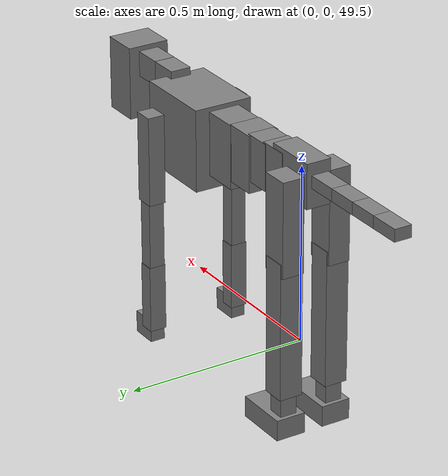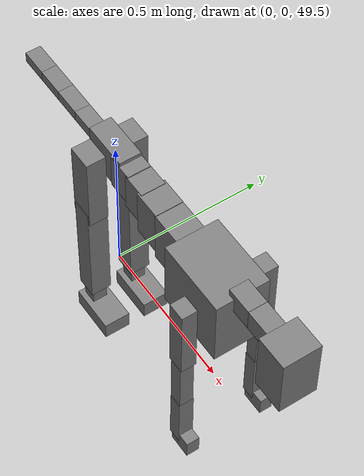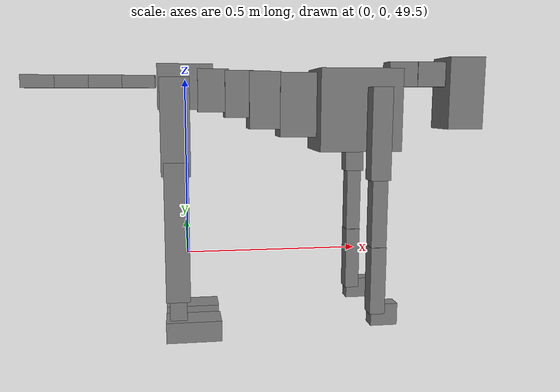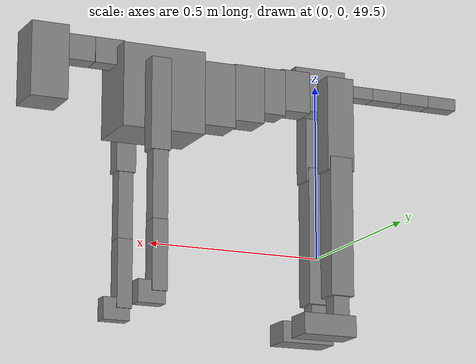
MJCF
<mujoco model="dog">

    <default>
        <joint armature="0.02" stiffness="1" damping="0.2" limited="true"/>
        <geom condim="3" friction="1 0.05 0.05" margin="0.01"/>
        <motor ctrllimited="true" ctrlrange="-1.0 1.0" forcelimited="true" gear="50"/>
    </default>

    <compiler inertiafromgeom="true" angle="radian"/>

    <option timestep="0.016" iterations="50" tolerance="1e-10" solver="Newton" jacobian="dense" cone="pyramidal"/>

    <size nconmax="20000" njmax="60000" nstack="5000000"/>
    <visual>
        <map force="0.1" zfar="30"/>
        <rgba haze="0.15 0.25 0.35 1"/>
        <quality shadowsize="2048"/>
        <global offwidth="800" offheight="800"/>
    </visual>

    <asset>
        <texture type="skybox" builtin="gradient" rgb1="0.3 0.5 0.7" rgb2="0 0 0" width="512" height="512"/>
        <texture name="texplane" type="2d" builtin="checker" rgb1=".2 .3 .4" rgb2=".1 0.15 0.2" width="512" height="512"
                 mark="cross" markrgb=".8 .8 .8"/>
        <texture name="texgeom" type="cube" builtin="flat" mark="cross" width="127" height="1278" rgb1="0.8 0.6 0.4"
                 rgb2="0.8 0.6 0.4" markrgb="1 1 1" random="0.01"/>

        <material name="matplane" reflectance="0.3" texture="texplane" texrepeat="1 1" texuniform="true"/>
        <material name="matgeom" texture="texgeom" texuniform="true" rgba="0.8 0.6 .4 1"/>
    </asset>

    <worldbody>
        <geom name="floor" pos="0 0 0" size="0 0 .25" type="plane" material="matplane" condim="3"/>

        <light directional="false" diffuse=".2 .2 .2" specular="0 0 0" pos="0 0 5" dir="0 0 -1" castshadow="false"/>
        <light mode="targetbodycom" target="torso" directional="false" diffuse=".8 .8 .8" specular="0.3 0.3 0.3"
               pos="0 0 4.0" dir="0 0 -1"/>

        <body name="root" pos="0 0 50">
            <freejoint name="root_1"/>
            <geom type="box" pos="0 0 -0.02" size="0.0774  0.0358  0.063" density="2030"/>

            <body name="spine1" pos="0.054 0 0">
                <joint name="spine1_y" axis="0 1 0" range="0 0.7" limited="true"/>
                <geom type="box" pos="0.02375 0 -0.03" size="0.04375  0.0375  0.05985" density="2030"/>

                <body name="spine2" pos="0.0612 0 0">
                    <joint name="spine2_y" axis="0 1 0" range="-0.15 0.15" limited="true"/>
                    <geom type="box" pos="0.03555  0  -0.04" size="0.04055  0.039  0.06615" density="2030"/>

                    <body name="spine3" pos="0.0730 0 0">
                        <joint name="spine3_y" axis="0 1 0" range="-0.15 0.15" limited="true"/>
                        <geom type="box" pos="0.03555  0  -0.057" size="0.04555  0.0445  0.081" density="2030"/>

                        <body name="spine4" pos="0.0780 0 0">
                            <joint name="spine4_y" axis="0 1 0" range="-0.15 0.15" limited="true"/>
                            <geom type="box" pos="0.05265  0  -0.07" size="0.05265  0.045  0.09135" density="2030"/>

                            <body name="torso" pos="0.1082 0 0">
                                <joint name="torso_y" axis="0 1 0" range="-0.15 0.15" limited="true"/>
                                <geom type="box" pos="0.11925  0  -0.085" size="0.11925  0.085  0.11745"
                                      density="2030"/>

                                <body name="neck1" pos="0.2160  0   0.0180">
                                    <joint name="neck1_y" axis="0 1 0" range="-1.2  -1" limited="true"/>
                                    <geom type="box" pos="0.0423  0  0" size="0.0423  0.03  0.036" density="2325"/>

                                    <body name="neck2" pos="0.0853  0  0">
                                        <joint name="neck2_y" axis="0 1 0" range="0.1  0" limited="true"/>
                                        <geom type="box" pos="0.0423  0  0" size="0.0423  0.03  0.036" density="2325"/>

                                        <body name="head" pos="0.0853  0  0">
                                            <joint name="head_y" axis="0 1 0" range="-0.3  -0.2" limited="true"/>
                                            <geom type="box" pos="0.0531  0  -0.055" size="0.0531  0.06  0.1044"
                                                  density="4030"/>

                                        </body>
                                    </body>
                                </body>

                                <body name="front_shoulder" pos="0.156  0   -0.0480">
                                    <joint name="front_shoulder_y" axis="0 1 0" range="-1 1.5" limited="true"/>
                                    <geom type="box" pos="0 0.13 -0.1015" size="0.0285  0.0243  0.1282" density="1158"/>
                                    <geom type="box" pos="0 -0.13 -0.1015" size="0.0285  0.0243  0.1282"
                                          density="1158"/>

                                    <body name="front_elbow" pos="0  0  -0.2031">
                                        <joint name="front_elbow_y" axis="0 1 0" range="-2 0" limited="true"/>
                                        <geom type="box" pos="0 0.13 -0.1146" size="0.0218  0.0223  0.1146"
                                              density="1081"/>
                                        <geom type="box" pos="0 -0.13 -0.1146" size="0.0218  0.0223  0.1146"
                                              density="1081"/>

                                        <body name="front_wrist" pos="0  0  -0.2291">
                                            <joint name="front_wrist_y" axis="0 1 0" range="-0.2 0" limited="true"/>
                                            <geom type="box" pos="0 0.13 -0.0837" size="0.0219  0.0243  0.0968"
                                                  density="1664"/>
                                            <geom type="box" pos="0 -0.13 -0.0837" size="0.0219  0.0243  0.0968"
                                                  density="1664"/>

                                            <body name="front_finger_end" pos="0  0  -0.1673">
                                                <joint name="front_finger_y" axis="0 1 0" range="-0.4 1"
                                                       limited="true"/>
                                                <geom type="box" pos="0.0211  0.13  -0.0163"
                                                      size="0.0387  0.0211  0.0313" density="1515"/>
                                                <geom type="box" pos="0.0211  -0.13  -0.0163"
                                                      size="0.0387  0.0211  0.0313" density="1515"/>

                                            </body>

                                        </body>
                                    </body>
                                </body>

                            </body>
                        </body>
                    </body>
                </body>
            </body>

            <body name="back_hip" pos="-0.03 0 -0.018">
                <joint name="back_hip_y" axis="0 1 0" range="-1.5 0.3" limited="true"/>
                <geom type="box" pos="0 0.07 -0.1118" size="0.0402  0.0315  0.1346" density="1154"/>
                <geom type="box" pos="0 -0.07 -0.1118" size="0.0402  0.0315  0.1346" density="1154"/>

                <body name="back_knee" pos="0  0  -0.2236">
                    <joint name="back_knee_y" axis="0 1 0" range="0 2.8" limited="true"/>
                    <geom type="box" pos="0 0.07 -0.1811" size="0.0339  0.0334  0.1967" density="1227"/>
                    <geom type="box" pos="0 -0.07 -0.1811" size="0.0339  0.0334  0.1967" density="1227"/>

                    <body name="back_ankle" pos="0  0  -0.3622">
                        <joint name="back_ankle_y" axis="0 1 0" range="-2.2 0" limited="true"/>
                        <geom type="box" pos="0 0.07 -0.0433" size="0.0240  0.0240  0.0546" density="1284"/>
                        <geom type="box" pos="0 -0.07 -0.0433" size="0.0240  0.0240  0.0546" density="1284"/>

                        <body name="back_toe_end" pos="0  0  -0.0867">
                            <joint name="back_toe_y" axis="0 1 0" range="-0.4 1" limited="true"/>
                            <geom type="box" pos="0.0426  0.07  -0.0147" size="0.0781  0.0426  0.0297" density="1515"/>
                            <geom type="box" pos="0.0426  -0.07  -0.0147" size="0.0781  0.0426  0.0297" density="1515"/>

                        </body>
                    </body>
                </body>
            </body>

            <body name="tail1" pos="-0.074 0 -0.006">
                <joint name="tail1_y" axis="0 1 0" range="-0.2 0.2" limited="true"/>
                <geom type="box" pos="-0.0536  0  0" size="0.045  0.025  0.0175" density="1587"/>

                <body name="tail2" pos="-0.09 0 0">
                    <joint name="tail2_y" axis="0 1 0" range="-0.2 0.2" limited="true"/>
                    <geom type="box" pos="-0.0536  0  0" size="0.045  0.025  0.0175" density="1587"/>

                    <body name="tail3" pos="-0.09 0 0">
                        <joint name="tail3_y" axis="0 1 0" range="-0.2 0.2" limited="true"/>
                        <geom type="box" pos="-0.0536  0  0" size="0.045  0.025  0.0175" density="1587"/>

                        <body name="tail4" pos="-0.09 0 0">
                            <joint name="tail4_y" axis="0 1 0" range="-0.2 0.2" limited="true"/>
                            <geom type="box" pos="-0.0536  0  0" size="0.045  0.025  0.0175" density="1587"/>

                        </body>
                    </body>
                </body>
            </body>
        </body>
    </worldbody>

    <actuator>
        <motor joint="spine1_y" forcerange="-150 150     "/>
        <motor joint="spine2_y" forcerange="-150 150     "/>
        <motor joint="spine3_y" forcerange="-150 150     "/>
        <motor joint="spine4_y" forcerange="-150 150     "/>
        <motor joint="torso_y" forcerange="-150 150     "/>
        <motor joint="neck1_y" forcerange="-100 100       "/>
        <motor joint="neck2_y" forcerange="-100 100       "/>
        <motor joint="head_y" forcerange="-150 150       "/>
        <motor joint="front_shoulder_y" forcerange="-104.98 157.29"/>
        <motor joint="front_elbow_y" forcerange="-161.48 100.85"/>
        <motor joint="front_wrist_y" forcerange="-135.63 58.71"/>
        <motor joint="front_finger_y" forcerange="-52.23 20.37"/>
        <motor joint="back_hip_y" forcerange="-315.96 304.12"/>
        <motor joint="back_knee_y" forcerange="-331.95 354.06"/>
        <motor joint="back_angle_y" forcerange="-147.87 136.81"/>
        <motor joint="back_toe_y" forcerange="-126.65 133.95"/>
        <motor joint="tail1_y" forcerange="-50 50     "/>
        <motor joint="tail2_y" forcerange="-50 50     "/>
        <motor joint="tail3_y" forcerange="-50 50     "/>
        <motor joint="tail4_y" forcerange="-50 50     "/>
    </actuator>
</mujoco>
